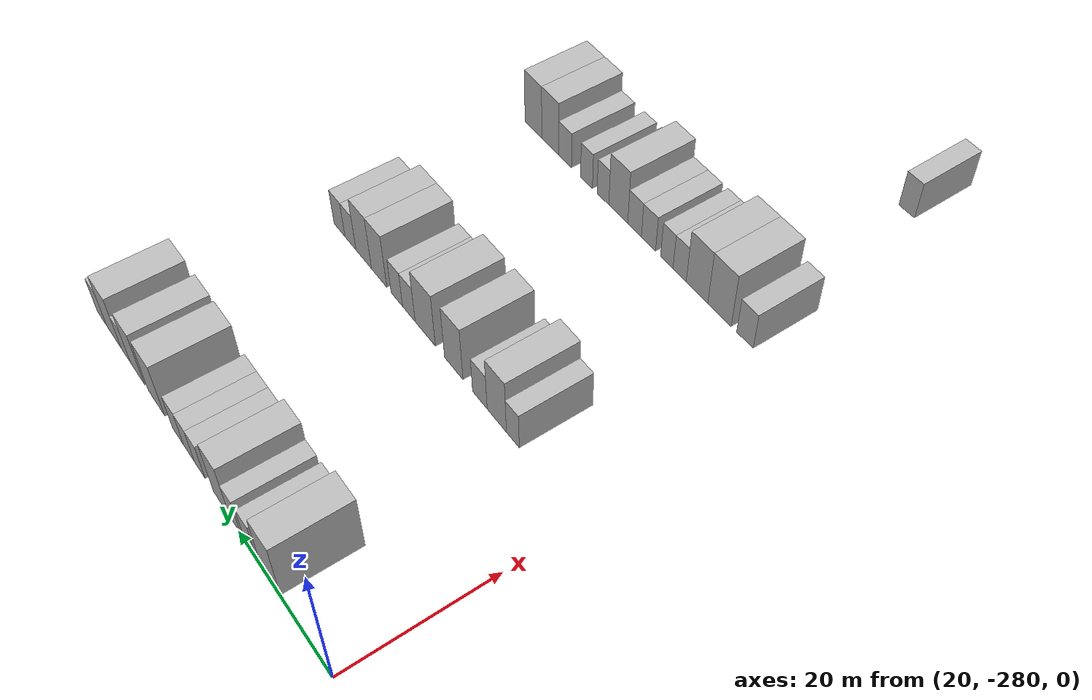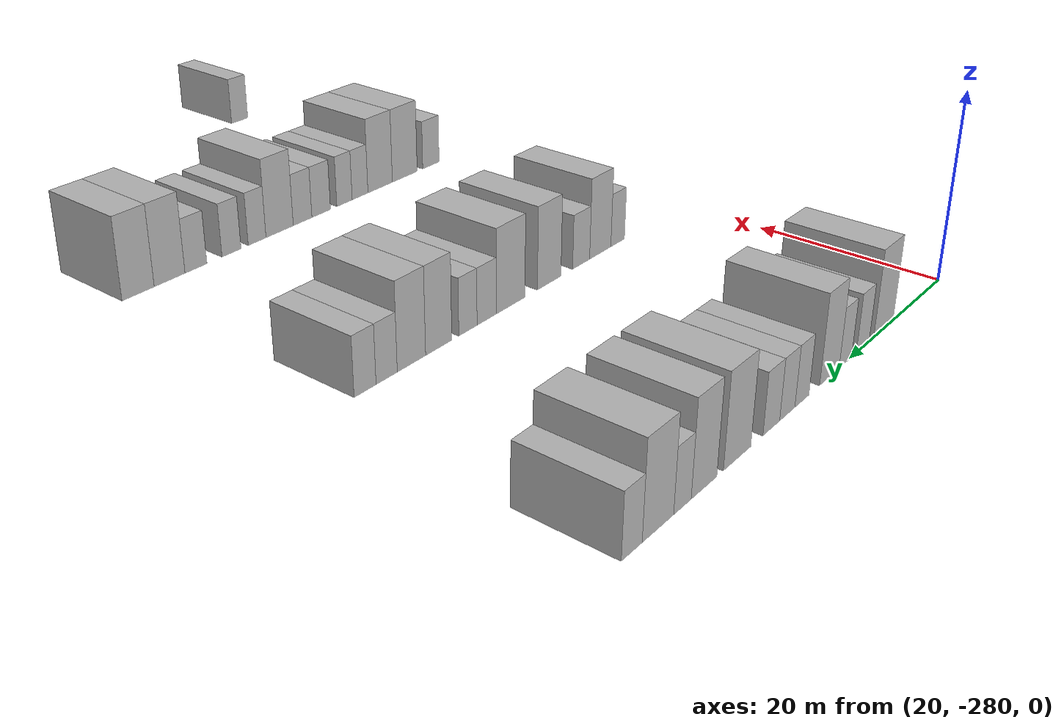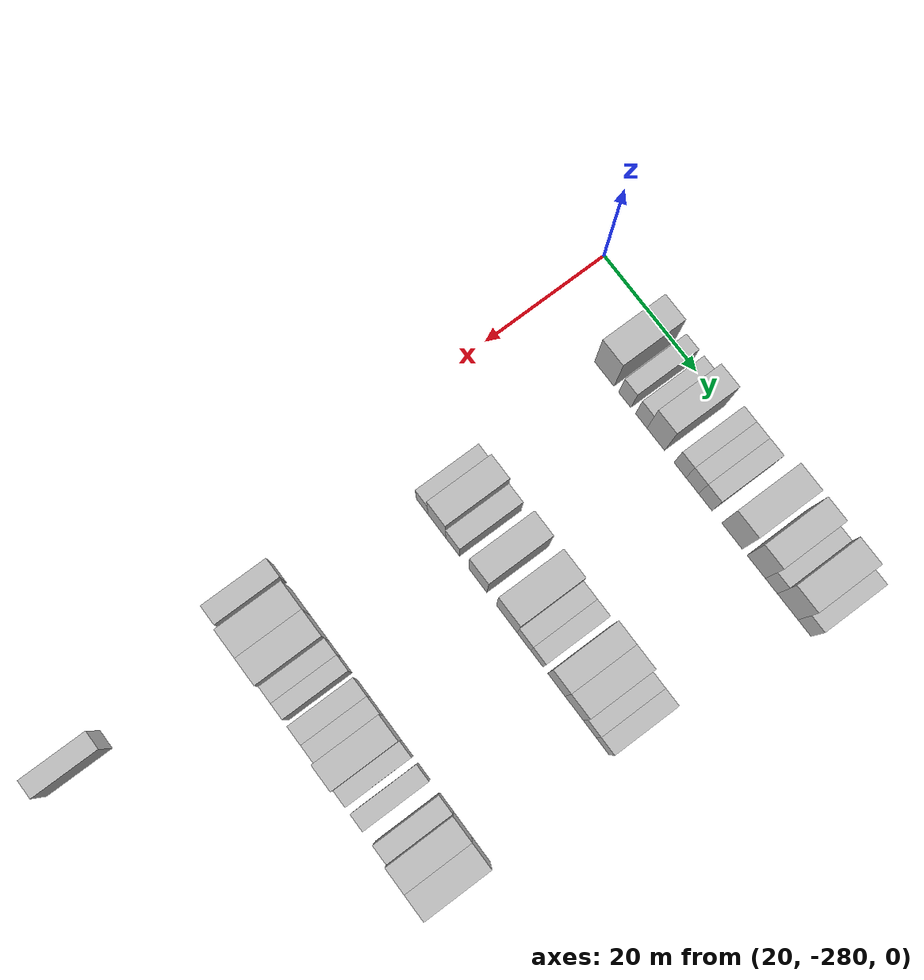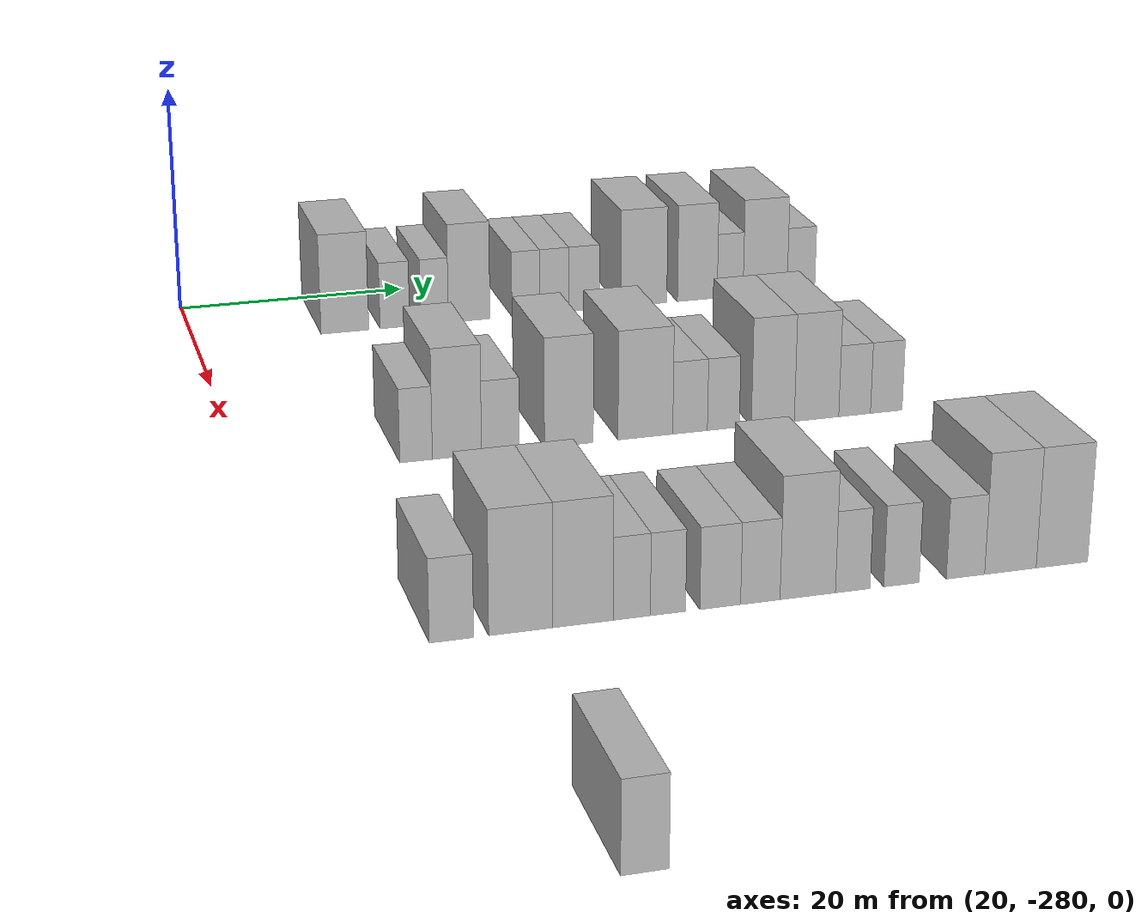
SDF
<sdf version="1.6">
 <world name="default">
  <model name="building_56">
   <static>1</static>
   <pose>25.0000 -267.0310 0 0.000000 0.000000 0.000000</pose>
   <link name="link">
    <pose>0 0 4.50 0 0 0</pose>
    <collision name="collision"><geometry><box><size>10.0000 4.2097 9.0000</size></box></geometry></collision>
    <visual name="visual">
     <cast_shadows>0</cast_shadows>
     <geometry><box><size>10.0000 4.2097 9.0000</size></box></geometry>
     <material>
      <script>
       <uri>model://HANNAS_wall/materials/scripts</uri>
       <uri>model://HANNAS_wall/materials/textures</uri>
       <name>vrc/HANNAS_wall</name>
      </script>
     </material>
    </visual>
   </link>
  </model>
  <model name="building_57">
   <static>1</static>
   <pose>25.0000 -262.6069 0 0.000000 0.000000 0.000000</pose>
   <link name="link">
    <pose>0 0 3.00 0 0 0</pose>
    <collision name="collision"><geometry><box><size>10.0000 2.6385 6.0000</size></box></geometry></collision>
    <visual name="visual">
     <cast_shadows>0</cast_shadows>
     <geometry><box><size>10.0000 2.6385 6.0000</size></box></geometry>
     <material>
      <script>
       <uri>model://HANNAS_wall/materials/scripts</uri>
       <uri>model://HANNAS_wall/materials/textures</uri>
       <name>vrc/HANNAS_wall</name>
      </script>
     </material>
    </visual>
   </link>
  </model>
  <model name="building_58">
   <static>1</static>
   <pose>25.0000 -259.0505 0 0.000000 0.000000 0.000000</pose>
   <link name="link">
    <pose>0 0 3.00 0 0 0</pose>
    <collision name="collision"><geometry><box><size>10.0000 2.4742 6.0000</size></box></geometry></collision>
    <visual name="visual">
     <cast_shadows>0</cast_shadows>
     <geometry><box><size>10.0000 2.4742 6.0000</size></box></geometry>
     <material>
      <script>
       <uri>model://HANNAS_wall/materials/scripts</uri>
       <uri>model://HANNAS_wall/materials/textures</uri>
       <name>vrc/HANNAS_wall</name>
      </script>
     </material>
    </visual>
   </link>
  </model>
  <model name="building_59">
   <static>1</static>
   <pose>25.0000 -255.9368 0 0.000000 0.000000 0.000000</pose>
   <link name="link">
    <pose>0 0 4.50 0 0 0</pose>
    <collision name="collision"><geometry><box><size>10.0000 3.7534 9.0000</size></box></geometry></collision>
    <visual name="visual">
     <cast_shadows>0</cast_shadows>
     <geometry><box><size>10.0000 3.7534 9.0000</size></box></geometry>
     <material>
      <script>
       <uri>model://HANNAS_wall/materials/scripts</uri>
       <uri>model://HANNAS_wall/materials/textures</uri>
       <name>vrc/HANNAS_wall</name>
      </script>
     </material>
    </visual>
   </link>
  </model>
  <model name="building_60">
   <static>1</static>
   <pose>25.0000 -250.7882 0 0.000000 0.000000 0.000000</pose>
   <link name="link">
    <pose>0 0 3.00 0 0 0</pose>
    <collision name="collision"><geometry><box><size>10.0000 2.5439 6.0000</size></box></geometry></collision>
    <visual name="visual">
     <cast_shadows>0</cast_shadows>
     <geometry><box><size>10.0000 2.5439 6.0000</size></box></geometry>
     <material>
      <script>
       <uri>model://HANNAS_wall/materials/scripts</uri>
       <uri>model://HANNAS_wall/materials/textures</uri>
       <name>vrc/HANNAS_wall</name>
      </script>
     </material>
    </visual>
   </link>
  </model>
  <model name="building_61">
   <static>1</static>
   <pose>25.0000 -248.1809 0 0.000000 0.000000 0.000000</pose>
   <link name="link">
    <pose>0 0 3.00 0 0 0</pose>
    <collision name="collision"><geometry><box><size>10.0000 2.6706 6.0000</size></box></geometry></collision>
    <visual name="visual">
     <cast_shadows>0</cast_shadows>
     <geometry><box><size>10.0000 2.6706 6.0000</size></box></geometry>
     <material>
      <script>
       <uri>model://HANNAS_wall/materials/scripts</uri>
       <uri>model://HANNAS_wall/materials/textures</uri>
       <name>vrc/HANNAS_wall</name>
      </script>
     </material>
    </visual>
   </link>
  </model>
  <model name="building_62">
   <static>1</static>
   <pose>25.0000 -245.4328 0 0.000000 0.000000 0.000000</pose>
   <link name="link">
    <pose>0 0 3.00 0 0 0</pose>
    <collision name="collision"><geometry><box><size>10.0000 2.8257 6.0000</size></box></geometry></collision>
    <visual name="visual">
     <cast_shadows>0</cast_shadows>
     <geometry><box><size>10.0000 2.8257 6.0000</size></box></geometry>
     <material>
      <script>
       <uri>model://HANNAS_wall/materials/scripts</uri>
       <uri>model://HANNAS_wall/materials/textures</uri>
       <name>vrc/HANNAS_wall</name>
      </script>
     </material>
    </visual>
   </link>
  </model>
  <model name="building_63">
   <static>1</static>
   <pose>25.0000 -239.8672 0 0.000000 0.000000 0.000000</pose>
   <link name="link">
    <pose>0 0 4.50 0 0 0</pose>
    <collision name="collision"><geometry><box><size>10.0000 4.3054 9.0000</size></box></geometry></collision>
    <visual name="visual">
     <cast_shadows>0</cast_shadows>
     <geometry><box><size>10.0000 4.3054 9.0000</size></box></geometry>
     <material>
      <script>
       <uri>model://HANNAS_wall/materials/scripts</uri>
       <uri>model://HANNAS_wall/materials/textures</uri>
       <name>vrc/HANNAS_wall</name>
      </script>
     </material>
    </visual>
   </link>
  </model>
  <model name="building_64">
   <static>1</static>
   <pose>25.0000 -234.8320 0 0.000000 0.000000 0.000000</pose>
   <link name="link">
    <pose>0 0 4.50 0 0 0</pose>
    <collision name="collision"><geometry><box><size>10.0000 3.7650 9.0000</size></box></geometry></collision>
    <visual name="visual">
     <cast_shadows>0</cast_shadows>
     <geometry><box><size>10.0000 3.7650 9.0000</size></box></geometry>
     <material>
      <script>
       <uri>model://HANNAS_wall/materials/scripts</uri>
       <uri>model://HANNAS_wall/materials/textures</uri>
       <name>vrc/HANNAS_wall</name>
      </script>
     </material>
    </visual>
   </link>
  </model>
  <model name="building_65">
   <static>1</static>
   <pose>25.0000 -231.7167 0 0.000000 0.000000 0.000000</pose>
   <link name="link">
    <pose>0 0 3.00 0 0 0</pose>
    <collision name="collision"><geometry><box><size>10.0000 2.4655 6.0000</size></box></geometry></collision>
    <visual name="visual">
     <cast_shadows>0</cast_shadows>
     <geometry><box><size>10.0000 2.4655 6.0000</size></box></geometry>
     <material>
      <script>
       <uri>model://HANNAS_wall/materials/scripts</uri>
       <uri>model://HANNAS_wall/materials/textures</uri>
       <name>vrc/HANNAS_wall</name>
      </script>
     </material>
    </visual>
   </link>
  </model>
  <model name="building_66">
   <static>1</static>
   <pose>25.0000 -228.3686 0 0.000000 0.000000 0.000000</pose>
   <link name="link">
    <pose>0 0 4.50 0 0 0</pose>
    <collision name="collision"><geometry><box><size>10.0000 4.2307 9.0000</size></box></geometry></collision>
    <visual name="visual">
     <cast_shadows>0</cast_shadows>
     <geometry><box><size>10.0000 4.2307 9.0000</size></box></geometry>
     <material>
      <script>
       <uri>model://HANNAS_wall/materials/scripts</uri>
       <uri>model://HANNAS_wall/materials/textures</uri>
       <name>vrc/HANNAS_wall</name>
      </script>
     </material>
    </visual>
   </link>
  </model>
  <model name="building_67">
   <static>1</static>
   <pose>25.0000 -224.9166 0 0.000000 0.000000 0.000000</pose>
   <link name="link">
    <pose>0 0 3.00 0 0 0</pose>
    <collision name="collision"><geometry><box><size>10.0000 2.6733 6.0000</size></box></geometry></collision>
    <visual name="visual">
     <cast_shadows>0</cast_shadows>
     <geometry><box><size>10.0000 2.6733 6.0000</size></box></geometry>
     <material>
      <script>
       <uri>model://HANNAS_wall/materials/scripts</uri>
       <uri>model://HANNAS_wall/materials/textures</uri>
       <name>vrc/HANNAS_wall</name>
      </script>
     </material>
    </visual>
   </link>
  </model>
  <model name="building_291">
   <static>1</static>
   <pose>55.0000 -267.0393 0 0.000000 0.000000 0.000000</pose>
   <link name="link">
    <pose>0 0 3.00 0 0 0</pose>
    <collision name="collision"><geometry><box><size>10.0000 2.5404 6.0000</size></box></geometry></collision>
    <visual name="visual">
     <cast_shadows>0</cast_shadows>
     <geometry><box><size>10.0000 2.5404 6.0000</size></box></geometry>
     <material>
      <script>
       <uri>model://HANNAS_wall/materials/scripts</uri>
       <uri>model://HANNAS_wall/materials/textures</uri>
       <name>vrc/HANNAS_wall</name>
      </script>
     </material>
    </visual>
   </link>
  </model>
  <model name="building_292">
   <static>1</static>
   <pose>55.0000 -263.8429 0 0.000000 0.000000 0.000000</pose>
   <link name="link">
    <pose>0 0 4.50 0 0 0</pose>
    <collision name="collision"><geometry><box><size>10.0000 3.8524 9.0000</size></box></geometry></collision>
    <visual name="visual">
     <cast_shadows>0</cast_shadows>
     <geometry><box><size>10.0000 3.8524 9.0000</size></box></geometry>
     <material>
      <script>
       <uri>model://HANNAS_wall/materials/scripts</uri>
       <uri>model://HANNAS_wall/materials/textures</uri>
       <name>vrc/HANNAS_wall</name>
      </script>
     </material>
    </visual>
   </link>
  </model>
  <model name="building_293">
   <static>1</static>
   <pose>55.0000 -260.4211 0 0.000000 0.000000 0.000000</pose>
   <link name="link">
    <pose>0 0 3.00 0 0 0</pose>
    <collision name="collision"><geometry><box><size>10.0000 2.9912 6.0000</size></box></geometry></collision>
    <visual name="visual">
     <cast_shadows>0</cast_shadows>
     <geometry><box><size>10.0000 2.9912 6.0000</size></box></geometry>
     <material>
      <script>
       <uri>model://HANNAS_wall/materials/scripts</uri>
       <uri>model://HANNAS_wall/materials/textures</uri>
       <name>vrc/HANNAS_wall</name>
      </script>
     </material>
    </visual>
   </link>
  </model>
  <model name="building_294">
   <static>1</static>
   <pose>55.0000 -254.9683 0 0.000000 0.000000 0.000000</pose>
   <link name="link">
    <pose>0 0 4.50 0 0 0</pose>
    <collision name="collision"><geometry><box><size>10.0000 3.9144 9.0000</size></box></geometry></collision>
    <visual name="visual">
     <cast_shadows>0</cast_shadows>
     <geometry><box><size>10.0000 3.9144 9.0000</size></box></geometry>
     <material>
      <script>
       <uri>model://HANNAS_wall/materials/scripts</uri>
       <uri>model://HANNAS_wall/materials/textures</uri>
       <name>vrc/HANNAS_wall</name>
      </script>
     </material>
    </visual>
   </link>
  </model>
  <model name="building_295">
   <static>1</static>
   <pose>55.0000 -248.7793 0 0.000000 0.000000 0.000000</pose>
   <link name="link">
    <pose>0 0 4.50 0 0 0</pose>
    <collision name="collision"><geometry><box><size>10.0000 4.4635 9.0000</size></box></geometry></collision>
    <visual name="visual">
     <cast_shadows>0</cast_shadows>
     <geometry><box><size>10.0000 4.4635 9.0000</size></box></geometry>
     <material>
      <script>
       <uri>model://HANNAS_wall/materials/scripts</uri>
       <uri>model://HANNAS_wall/materials/textures</uri>
       <name>vrc/HANNAS_wall</name>
      </script>
     </material>
    </visual>
   </link>
  </model>
  <model name="building_296">
   <static>1</static>
   <pose>55.0000 -245.1224 0 0.000000 0.000000 0.000000</pose>
   <link name="link">
    <pose>0 0 3.00 0 0 0</pose>
    <collision name="collision"><geometry><box><size>10.0000 2.8504 6.0000</size></box></geometry></collision>
    <visual name="visual">
     <cast_shadows>0</cast_shadows>
     <geometry><box><size>10.0000 2.8504 6.0000</size></box></geometry>
     <material>
      <script>
       <uri>model://HANNAS_wall/materials/scripts</uri>
       <uri>model://HANNAS_wall/materials/textures</uri>
       <name>vrc/HANNAS_wall</name>
      </script>
     </material>
    </visual>
   </link>
  </model>
  <model name="building_297">
   <static>1</static>
   <pose>55.0000 -242.3772 0 0.000000 0.000000 0.000000</pose>
   <link name="link">
    <pose>0 0 3.00 0 0 0</pose>
    <collision name="collision"><geometry><box><size>10.0000 2.6400 6.0000</size></box></geometry></collision>
    <visual name="visual">
     <cast_shadows>0</cast_shadows>
     <geometry><box><size>10.0000 2.6400 6.0000</size></box></geometry>
     <material>
      <script>
       <uri>model://HANNAS_wall/materials/scripts</uri>
       <uri>model://HANNAS_wall/materials/textures</uri>
       <name>vrc/HANNAS_wall</name>
      </script>
     </material>
    </visual>
   </link>
  </model>
  <model name="building_298">
   <static>1</static>
   <pose>55.0000 -238.2558 0 0.000000 0.000000 0.000000</pose>
   <link name="link">
    <pose>0 0 4.50 0 0 0</pose>
    <collision name="collision"><geometry><box><size>10.0000 3.6026 9.0000</size></box></geometry></collision>
    <visual name="visual">
     <cast_shadows>0</cast_shadows>
     <geometry><box><size>10.0000 3.6026 9.0000</size></box></geometry>
     <material>
      <script>
       <uri>model://HANNAS_wall/materials/scripts</uri>
       <uri>model://HANNAS_wall/materials/textures</uri>
       <name>vrc/HANNAS_wall</name>
      </script>
     </material>
    </visual>
   </link>
  </model>
  <model name="building_299">
   <static>1</static>
   <pose>55.0000 -234.5783 0 0.000000 0.000000 0.000000</pose>
   <link name="link">
    <pose>0 0 4.50 0 0 0</pose>
    <collision name="collision"><geometry><box><size>10.0000 3.7525 9.0000</size></box></geometry></collision>
    <visual name="visual">
     <cast_shadows>0</cast_shadows>
     <geometry><box><size>10.0000 3.7525 9.0000</size></box></geometry>
     <material>
      <script>
       <uri>model://HANNAS_wall/materials/scripts</uri>
       <uri>model://HANNAS_wall/materials/textures</uri>
       <name>vrc/HANNAS_wall</name>
      </script>
     </material>
    </visual>
   </link>
  </model>
  <model name="building_300">
   <static>1</static>
   <pose>55.0000 -231.3506 0 0.000000 0.000000 0.000000</pose>
   <link name="link">
    <pose>0 0 3.00 0 0 0</pose>
    <collision name="collision"><geometry><box><size>10.0000 2.7028 6.0000</size></box></geometry></collision>
    <visual name="visual">
     <cast_shadows>0</cast_shadows>
     <geometry><box><size>10.0000 2.7028 6.0000</size></box></geometry>
     <material>
      <script>
       <uri>model://HANNAS_wall/materials/scripts</uri>
       <uri>model://HANNAS_wall/materials/textures</uri>
       <name>vrc/HANNAS_wall</name>
      </script>
     </material>
    </visual>
   </link>
  </model>
  <model name="building_301">
   <static>1</static>
   <pose>55.0000 -228.6457 0 0.000000 0.000000 0.000000</pose>
   <link name="link">
    <pose>0 0 3.00 0 0 0</pose>
    <collision name="collision"><geometry><box><size>10.0000 2.7071 6.0000</size></box></geometry></collision>
    <visual name="visual">
     <cast_shadows>0</cast_shadows>
     <geometry><box><size>10.0000 2.7071 6.0000</size></box></geometry>
     <material>
      <script>
       <uri>model://HANNAS_wall/materials/scripts</uri>
       <uri>model://HANNAS_wall/materials/textures</uri>
       <name>vrc/HANNAS_wall</name>
      </script>
     </material>
    </visual>
   </link>
  </model>
  <model name="building_527">
   <static>1</static>
   <pose>85.0000 -271.0180 0 0.000000 0.000000 0.000000</pose>
   <link name="link">
    <pose>0 0 3.00 0 0 0</pose>
    <collision name="collision"><geometry><box><size>10.0000 2.9690 6.0000</size></box></geometry></collision>
    <visual name="visual">
     <cast_shadows>0</cast_shadows>
     <geometry><box><size>10.0000 2.9690 6.0000</size></box></geometry>
     <material>
      <script>
       <uri>model://HANNAS_wall/materials/scripts</uri>
       <uri>model://HANNAS_wall/materials/textures</uri>
       <name>vrc/HANNAS_wall</name>
      </script>
     </material>
    </visual>
   </link>
  </model>
  <model name="building_528">
   <static>1</static>
   <pose>85.0000 -266.3637 0 0.000000 0.000000 0.000000</pose>
   <link name="link">
    <pose>0 0 4.50 0 0 0</pose>
    <collision name="collision"><geometry><box><size>10.0000 4.3396 9.0000</size></box></geometry></collision>
    <visual name="visual">
     <cast_shadows>0</cast_shadows>
     <geometry><box><size>10.0000 4.3396 9.0000</size></box></geometry>
     <material>
      <script>
       <uri>model://HANNAS_wall/materials/scripts</uri>
       <uri>model://HANNAS_wall/materials/textures</uri>
       <name>vrc/HANNAS_wall</name>
      </script>
     </material>
    </visual>
   </link>
  </model>
  <model name="building_529">
   <static>1</static>
   <pose>85.0000 -262.1334 0 0.000000 0.000000 0.000000</pose>
   <link name="link">
    <pose>0 0 4.50 0 0 0</pose>
    <collision name="collision"><geometry><box><size>10.0000 4.1210 9.0000</size></box></geometry></collision>
    <visual name="visual">
     <cast_shadows>0</cast_shadows>
     <geometry><box><size>10.0000 4.1210 9.0000</size></box></geometry>
     <material>
      <script>
       <uri>model://HANNAS_wall/materials/scripts</uri>
       <uri>model://HANNAS_wall/materials/textures</uri>
       <name>vrc/HANNAS_wall</name>
      </script>
     </material>
    </visual>
   </link>
  </model>
  <model name="building_530">
   <static>1</static>
   <pose>85.0000 -258.7859 0 0.000000 0.000000 0.000000</pose>
   <link name="link">
    <pose>0 0 3.00 0 0 0</pose>
    <collision name="collision"><geometry><box><size>10.0000 2.5741 6.0000</size></box></geometry></collision>
    <visual name="visual">
     <cast_shadows>0</cast_shadows>
     <geometry><box><size>10.0000 2.5741 6.0000</size></box></geometry>
     <material>
      <script>
       <uri>model://HANNAS_wall/materials/scripts</uri>
       <uri>model://HANNAS_wall/materials/textures</uri>
       <name>vrc/HANNAS_wall</name>
      </script>
     </material>
    </visual>
   </link>
  </model>
  <model name="building_531">
   <static>1</static>
   <pose>85.0000 -256.2728 0 0.000000 0.000000 0.000000</pose>
   <link name="link">
    <pose>0 0 3.00 0 0 0</pose>
    <collision name="collision"><geometry><box><size>10.0000 2.4522 6.0000</size></box></geometry></collision>
    <visual name="visual">
     <cast_shadows>0</cast_shadows>
     <geometry><box><size>10.0000 2.4522 6.0000</size></box></geometry>
     <material>
      <script>
       <uri>model://HANNAS_wall/materials/scripts</uri>
       <uri>model://HANNAS_wall/materials/textures</uri>
       <name>vrc/HANNAS_wall</name>
      </script>
     </material>
    </visual>
   </link>
  </model>
  <model name="building_532">
   <static>1</static>
   <pose>85.0000 -252.6139 0 0.000000 0.000000 0.000000</pose>
   <link name="link">
    <pose>0 0 3.00 0 0 0</pose>
    <collision name="collision"><geometry><box><size>10.0000 2.8656 6.0000</size></box></geometry></collision>
    <visual name="visual">
     <cast_shadows>0</cast_shadows>
     <geometry><box><size>10.0000 2.8656 6.0000</size></box></geometry>
     <material>
      <script>
       <uri>model://HANNAS_wall/materials/scripts</uri>
       <uri>model://HANNAS_wall/materials/textures</uri>
       <name>vrc/HANNAS_wall</name>
      </script>
     </material>
    </visual>
   </link>
  </model>
  <model name="building_533">
   <static>1</static>
   <pose>85.0000 -249.7798 0 0.000000 0.000000 0.000000</pose>
   <link name="link">
    <pose>0 0 3.00 0 0 0</pose>
    <collision name="collision"><geometry><box><size>10.0000 2.8025 6.0000</size></box></geometry></collision>
    <visual name="visual">
     <cast_shadows>0</cast_shadows>
     <geometry><box><size>10.0000 2.8025 6.0000</size></box></geometry>
     <material>
      <script>
       <uri>model://HANNAS_wall/materials/scripts</uri>
       <uri>model://HANNAS_wall/materials/textures</uri>
       <name>vrc/HANNAS_wall</name>
      </script>
     </material>
    </visual>
   </link>
  </model>
  <model name="building_534">
   <static>1</static>
   <pose>85.0000 -246.3937 0 0.000000 0.000000 0.000000</pose>
   <link name="link">
    <pose>0 0 4.50 0 0 0</pose>
    <collision name="collision"><geometry><box><size>10.0000 3.9698 9.0000</size></box></geometry></collision>
    <visual name="visual">
     <cast_shadows>0</cast_shadows>
     <geometry><box><size>10.0000 3.9698 9.0000</size></box></geometry>
     <material>
      <script>
       <uri>model://HANNAS_wall/materials/scripts</uri>
       <uri>model://HANNAS_wall/materials/textures</uri>
       <name>vrc/HANNAS_wall</name>
      </script>
     </material>
    </visual>
   </link>
  </model>
  <model name="building_535">
   <static>1</static>
   <pose>85.0000 -243.1587 0 0.000000 0.000000 0.000000</pose>
   <link name="link">
    <pose>0 0 3.00 0 0 0</pose>
    <collision name="collision"><geometry><box><size>10.0000 2.5003 6.0000</size></box></geometry></collision>
    <visual name="visual">
     <cast_shadows>0</cast_shadows>
     <geometry><box><size>10.0000 2.5003 6.0000</size></box></geometry>
     <material>
      <script>
       <uri>model://HANNAS_wall/materials/scripts</uri>
       <uri>model://HANNAS_wall/materials/textures</uri>
       <name>vrc/HANNAS_wall</name>
      </script>
     </material>
    </visual>
   </link>
  </model>
  <model name="building_536">
   <static>1</static>
   <pose>85.0000 -239.6136 0 0.000000 0.000000 0.000000</pose>
   <link name="link">
    <pose>0 0 3.00 0 0 0</pose>
    <collision name="collision"><geometry><box><size>10.0000 2.5898 6.0000</size></box></geometry></collision>
    <visual name="visual">
     <cast_shadows>0</cast_shadows>
     <geometry><box><size>10.0000 2.5898 6.0000</size></box></geometry>
     <material>
      <script>
       <uri>model://HANNAS_wall/materials/scripts</uri>
       <uri>model://HANNAS_wall/materials/textures</uri>
       <name>vrc/HANNAS_wall</name>
      </script>
     </material>
    </visual>
   </link>
  </model>
  <model name="building_537">
   <static>1</static>
   <pose>85.0000 -234.8967 0 0.000000 0.000000 0.000000</pose>
   <link name="link">
    <pose>0 0 3.00 0 0 0</pose>
    <collision name="collision"><geometry><box><size>10.0000 2.8440 6.0000</size></box></geometry></collision>
    <visual name="visual">
     <cast_shadows>0</cast_shadows>
     <geometry><box><size>10.0000 2.8440 6.0000</size></box></geometry>
     <material>
      <script>
       <uri>model://HANNAS_wall/materials/scripts</uri>
       <uri>model://HANNAS_wall/materials/textures</uri>
       <name>vrc/HANNAS_wall</name>
      </script>
     </material>
    </visual>
   </link>
  </model>
  <model name="building_538">
   <static>1</static>
   <pose>85.0000 -231.5458 0 0.000000 0.000000 0.000000</pose>
   <link name="link">
    <pose>0 0 4.50 0 0 0</pose>
    <collision name="collision"><geometry><box><size>10.0000 3.8579 9.0000</size></box></geometry></collision>
    <visual name="visual">
     <cast_shadows>0</cast_shadows>
     <geometry><box><size>10.0000 3.8579 9.0000</size></box></geometry>
     <material>
      <script>
       <uri>model://HANNAS_wall/materials/scripts</uri>
       <uri>model://HANNAS_wall/materials/textures</uri>
       <name>vrc/HANNAS_wall</name>
      </script>
     </material>
    </visual>
   </link>
  </model>
  <model name="building_539">
   <static>1</static>
   <pose>85.0000 -227.6731 0 0.000000 0.000000 0.000000</pose>
   <link name="link">
    <pose>0 0 4.50 0 0 0</pose>
    <collision name="collision"><geometry><box><size>10.0000 3.8875 9.0000</size></box></geometry></collision>
    <visual name="visual">
     <cast_shadows>0</cast_shadows>
     <geometry><box><size>10.0000 3.8875 9.0000</size></box></geometry>
     <material>
      <script>
       <uri>model://HANNAS_wall/materials/scripts</uri>
       <uri>model://HANNAS_wall/materials/textures</uri>
       <name>vrc/HANNAS_wall</name>
      </script>
     </material>
    </visual>
   </link>
  </model>
  <model name="building_760">
   <static>1</static>
   <pose>115.0000 -266.9293 0 0.000000 0.000000 0.000000</pose>
   <link name="link">
    <pose>0 0 3.00 0 0 0</pose>
    <collision name="collision"><geometry><box><size>10.0000 2.7797 6.0000</size></box></geometry></collision>
    <visual name="visual">
     <cast_shadows>0</cast_shadows>
     <geometry><box><size>10.0000 2.7797 6.0000</size></box></geometry>
     <material>
      <script>
       <uri>model://HANNAS_wall/materials/scripts</uri>
       <uri>model://HANNAS_wall/materials/textures</uri>
       <name>vrc/HANNAS_wall</name>
      </script>
     </material>
    </visual>
   </link>
  </model>
 </world>
</sdf>
